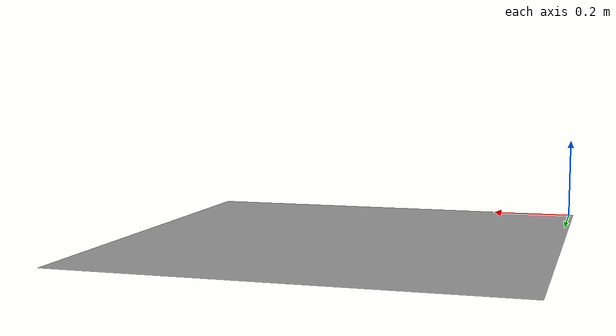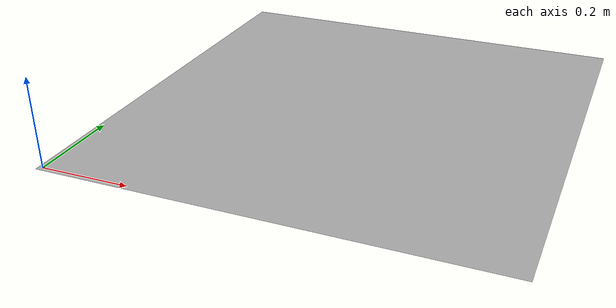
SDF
<?xml version="1.0"?>
<sdf version="1.6">
  <model name="aprilgrid">
    <allow_auto_disable>true</allow_auto_disable>
    <link name="aprilgrid">
      <kinematic>true</kinematic>

      <visual name="visual">
        <geometry>
          <mesh>
            <uri>model://aprilgrid/aprilgrid.obj</uri>
            <scale>1 1 1</scale>
          </mesh>
        </geometry>
      </visual>
    </link>
    <plugin
      filename="gz-sim-pose-publisher-system"
      name="gz::sim::systems::PosePublisher">
      <publish_link_pose>false</publish_link_pose>
      <publish_collision_pose>false</publish_collision_pose>
      <publish_visual_pose>false</publish_visual_pose>
      <publish_nested_model_pose>true</publish_nested_model_pose>
    </plugin>
  </model>
</sdf>
